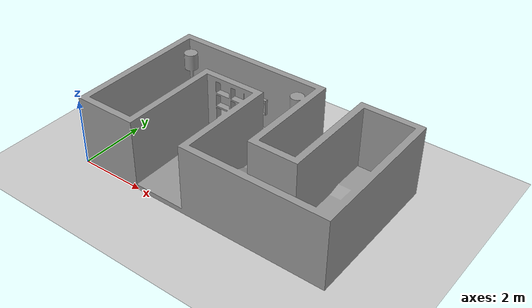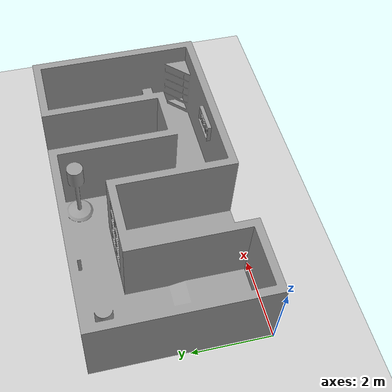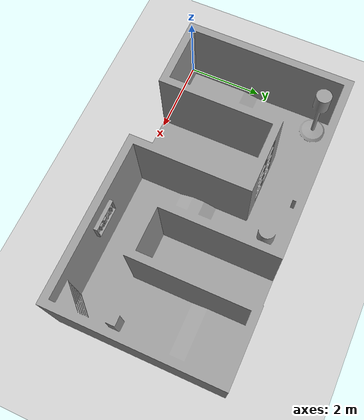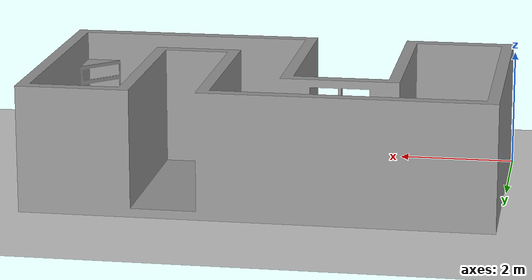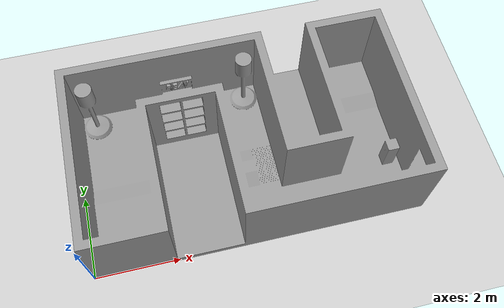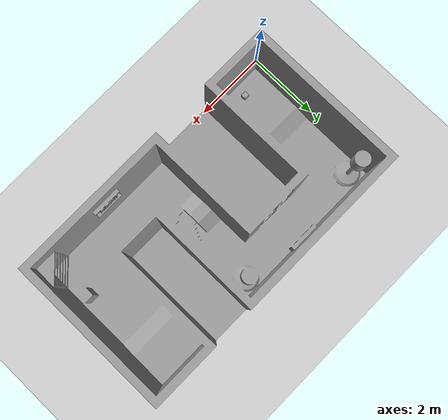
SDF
<sdf version="1.7">
 <world name="default">
  <light name="sun" type="directional">
   <pose>0 0 10 0 -0 0</pose>
   <diffuse>0.8 0.8 0.8 1</diffuse>
   <specular>0.2 0.2 0.2 1</specular>
   <attenuation>
    <range>1000</range>
    <constant>0.9</constant>
    <linear>0.01</linear>
    <quadratic>0.001</quadratic>
   </attenuation>
   <direction>-0.5 0.1 -0.9</direction>
   <spot><inner_angle>0</inner_angle><outer_angle>0</outer_angle><falloff>0</falloff></spot>
  </light>
  <model name="ground_plane">
   <static>1</static>
   <link name="link">
    <collision name="collision">
     <geometry><plane><normal>0 0 1</normal><size>100 100</size></plane></geometry>
     <surface><friction><ode><mu>100</mu><mu2>50</mu2></ode></friction></surface>
    </collision>
    <visual name="visual">
     <cast_shadows>0</cast_shadows>
     <geometry><plane><normal>0 0 1</normal><size>100 100</size></plane></geometry>
     <material>
      <script><uri>file://media/materials/scripts/gazebo.material</uri><name>Gazebo/Grey</name></script>
     </material>
    </visual>
   </link>
  </model>
  <gravity>0 0 -9.8</gravity>
  <magnetic_field>6e-06 2.3e-05 -4.2e-05</magnetic_field>
  <atmosphere type="adiabatic"/>
  <physics type="ode">
   <max_step_size>0.001</max_step_size>
   <real_time_factor>1</real_time_factor>
   <real_time_update_rate>1000</real_time_update_rate>
  </physics>
  <scene><ambient>0.4 0.4 0.4 1</ambient><background>0.7 0.7 0.7 1</background><shadows>1</shadows></scene>
  <audio><device>default</device></audio>
  <spherical_coordinates>
   <surface_model>EARTH_WGS84</surface_model>
   <latitude_deg>0</latitude_deg>
   <longitude_deg>0</longitude_deg>
   <elevation>0</elevation>
   <heading_deg>0</heading_deg>
  </spherical_coordinates>
  <model name="projhome">
   <link name="link_0">
    <inertial>
     <mass>1</mass>
     <inertia>
      <ixx>0.166667</ixx>
      <ixy>0</ixy>
      <ixz>0</ixz>
      <iyy>0.166667</iyy>
      <iyz>0</iyz>
      <izz>0.166667</izz>
     </inertia>
    </inertial>
    <visual name="visual">
     <geometry>
      <mesh>
       <uri>/home/kunphakkapohn/projectrobotic2/src/articubot_one/model/house.dae</uri>
       <scale>1 1 1</scale>
      </mesh>
     </geometry>
     <material>
      <lighting>1</lighting>
      <script><uri>file://media/materials/scripts/gazebo.material</uri><name>Gazebo/Grey</name></script>
      <shader type="pixel"/>
     </material>
    </visual>
    <collision name="collision">
     <geometry>
      <mesh>
       <uri>/home/kunphakkapohn/projectrobotic2/src/articubot_one/model/house.dae</uri>
       <scale>1 1 1</scale>
      </mesh>
     </geometry>
     <surface>
      <friction>
       <ode><mu>1</mu><mu2>1</mu2><fdir1>0 0 0</fdir1><slip1>0</slip1><slip2>0</slip2></ode>
       <torsional>
        <coefficient>1</coefficient>
        <patch_radius>0</patch_radius>
        <surface_radius>0</surface_radius>
        <use_patch_radius>1</use_patch_radius>
        <ode><slip>0</slip></ode>
       </torsional>
      </friction>
      <bounce><restitution_coefficient>0</restitution_coefficient><threshold>1e+06</threshold></bounce>
      <contact>
       <collide_without_contact>0</collide_without_contact>
       <collide_without_contact_bitmask>1</collide_without_contact_bitmask>
       <collide_bitmask>1</collide_bitmask>
       <ode>
        <soft_cfm>0</soft_cfm>
        <soft_erp>0.2</soft_erp>
        <kp>1e+13</kp>
        <kd>1</kd>
        <max_vel>0.01</max_vel>
        <min_depth>0</min_depth>
       </ode>
       <bullet>
        <split_impulse>1</split_impulse>
        <split_impulse_penetration_threshold>-0.01</split_impulse_penetration_threshold>
        <soft_cfm>0</soft_cfm>
        <soft_erp>0.2</soft_erp>
        <kp>1e+13</kp>
        <kd>1</kd>
       </bullet>
      </contact>
     </surface>
    </collision>
   </link>
   <static>1</static>
   <allow_auto_disable>0</allow_auto_disable>
   <pose>0.774151 0.662117 0 0 -0 0</pose>
  </model>
  <model name="homepro">
   <link name="link_0">
    <inertial>
     <mass>0.02</mass>
     <inertia><ixx>0.01</ixx><ixy>0</ixy><ixz>0</ixz><iyy>0.01</iyy><iyz>0</iyz><izz>0.01</izz></inertia>
    </inertial>
    <visual name="visual">
     <geometry>
      <mesh>
       <uri>/home/kunphakkapohn/projectrobotic2/src/articubot_one/model/rebox150mm.dae</uri>
       <scale>1 1 1</scale>
      </mesh>
     </geometry>
     <material>
      <lighting>1</lighting>
      <script><uri>file://media/materials/scripts/gazebo.material</uri><name>Gazebo/Grey</name></script>
      <shader type="pixel"><normal_map>__default__</normal_map></shader>
     </material>
    </visual>
    <collision name="collision">
     <geometry>
      <mesh>
       <uri>/home/kunphakkapohn/projectrobotic2/src/articubot_one/model/rebox150mm.dae</uri>
       <scale>1 1 1</scale>
      </mesh>
     </geometry>
     <surface>
      <friction>
       <ode><mu>40</mu><mu2>40</mu2><fdir1>0 0 0</fdir1><slip1>0</slip1><slip2>0</slip2></ode>
       <torsional>
        <coefficient>1</coefficient>
        <patch_radius>0</patch_radius>
        <surface_radius>0</surface_radius>
        <use_patch_radius>1</use_patch_radius>
        <ode><slip>0</slip></ode>
       </torsional>
      </friction>
      <bounce><restitution_coefficient>0</restitution_coefficient><threshold>1e+06</threshold></bounce>
      <contact>
       <collide_without_contact>0</collide_without_contact>
       <collide_without_contact_bitmask>1</collide_without_contact_bitmask>
       <collide_bitmask>1</collide_bitmask>
       <ode>
        <soft_cfm>0.01</soft_cfm>
        <soft_erp>0.7</soft_erp>
        <kp>10000.1</kp>
        <kd>1000</kd>
        <max_vel>0.01</max_vel>
        <min_depth>0</min_depth>
       </ode>
       <bullet>
        <split_impulse>1</split_impulse>
        <split_impulse_penetration_threshold>-0.01</split_impulse_penetration_threshold>
        <soft_cfm>0.01</soft_cfm>
        <soft_erp>0.7</soft_erp>
        <kp>10000.1</kp>
        <kd>1000</kd>
       </bullet>
      </contact>
     </surface>
    </collision>
   </link>
   <static>0</static>
   <pose>0.98203 0.52089 0.203673 0.000982 -0.001404 0.000556</pose>
  </model>
 </world>
</sdf>
